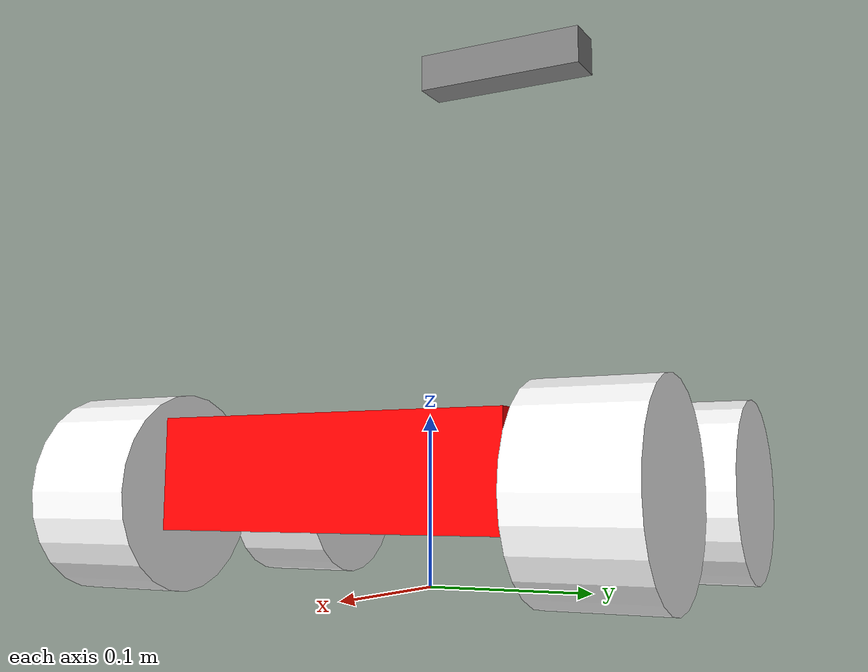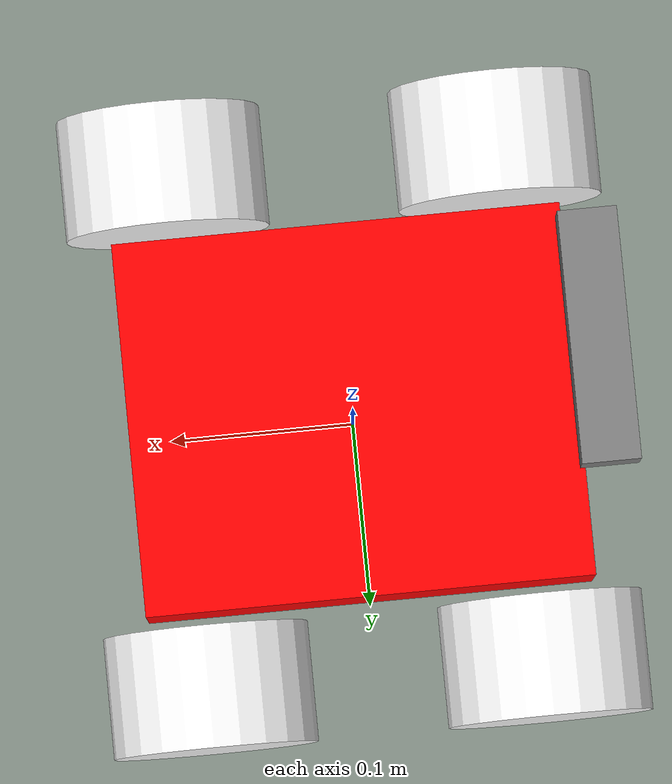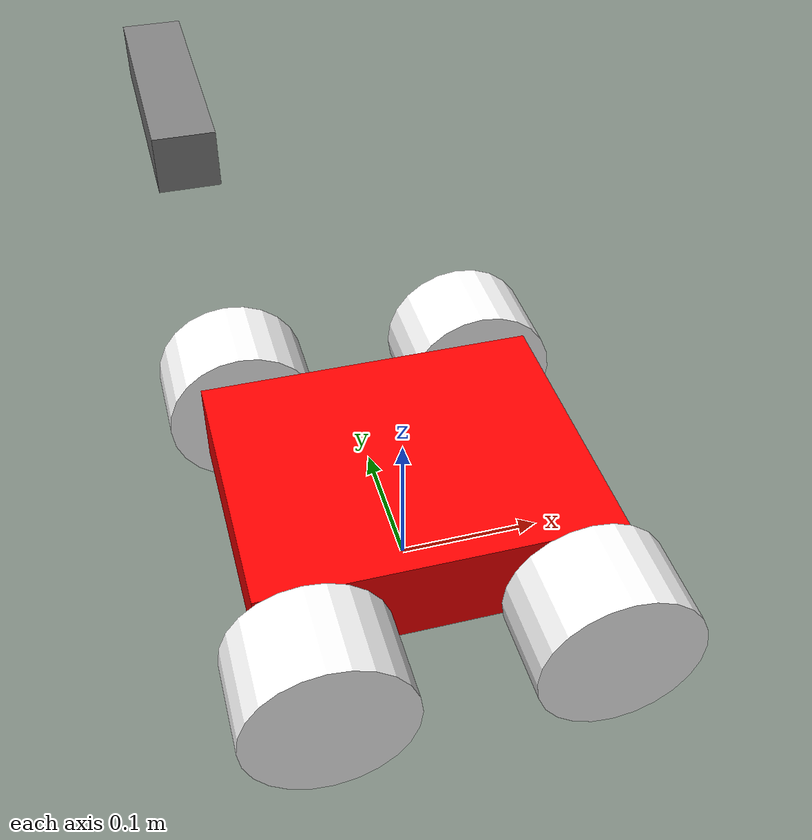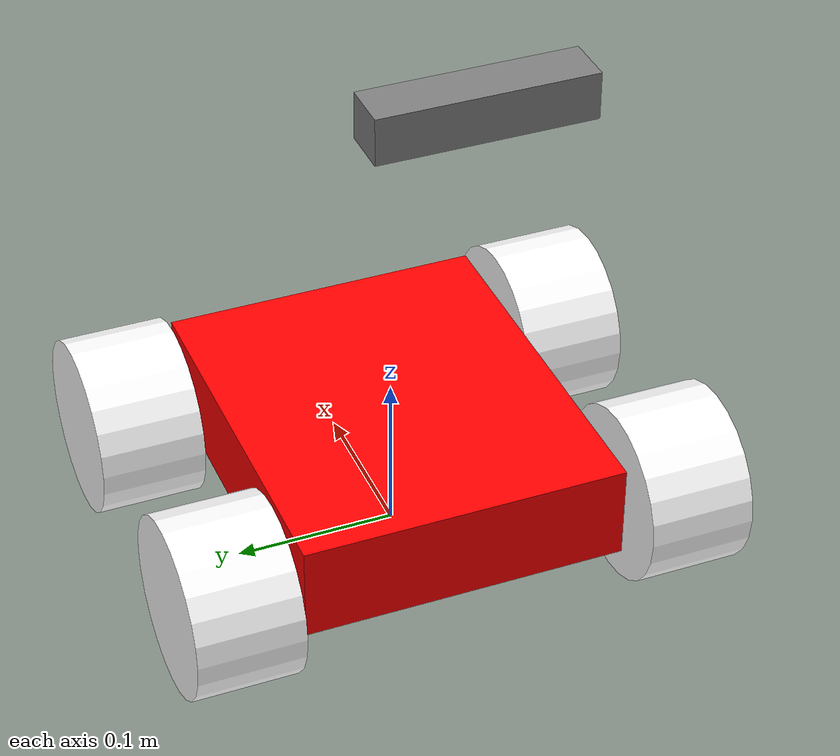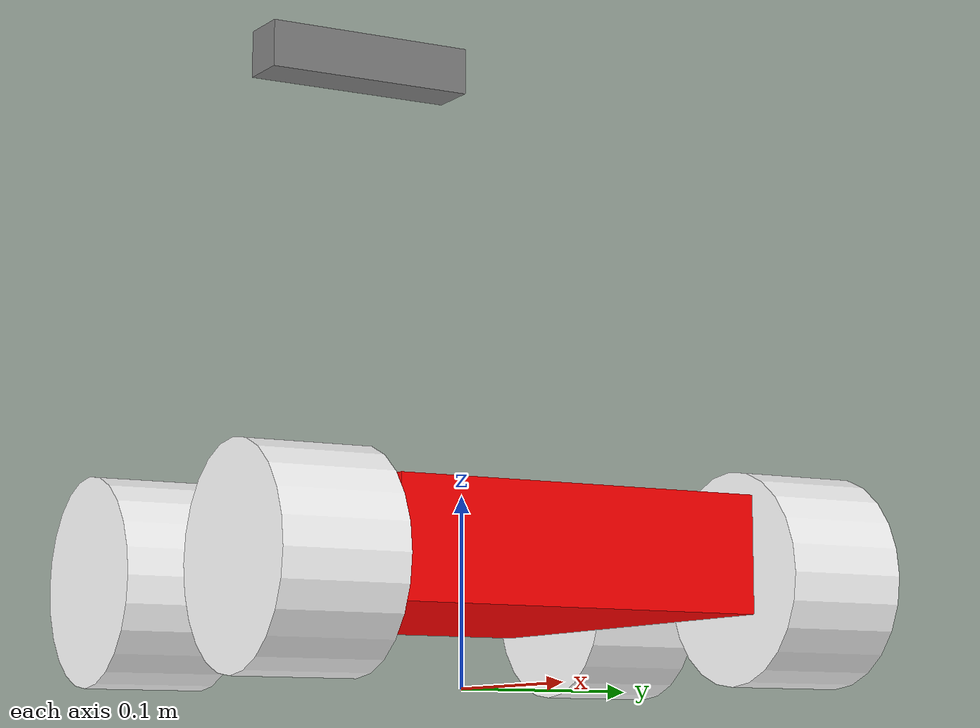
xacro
<?xml version="1.0" ?>
<robot name="mariam" xmlns:xacro="http://ros.org/wiki/xacro">

  <!-- ****************** ROBOT CONSTANTS *******************************  -->
  <!-- Define the size of the robot's main chassis in meters -->
  <xacro:property name="base_width" value="0.20"/>
  <xacro:property name="base_length" value="0.24"/>
  <xacro:property name="base_height" value="0.06"/>

  <!-- Define the shape of the robot's two back wheels in meters -->
  <xacro:property name="wheel_radius" value="0.055"/>
  <xacro:property name="wheel_width" value="0.065"/>

  <!-- x-axis points forward, y-axis points to left, z-axis points upwards -->
  <!-- Define the gap between the wheel and chassis along y-axis in meters -->
  <xacro:property name="wheel_ygap" value="0.04"/>

  <!-- Position the wheels along the z-axis -->
  <xacro:property name="wheel_zoff" value="0.01"/>

  <!-- Position the wheels along the x-axis -->
  <xacro:property name="wheel_xoff" value="0.09"/>

  <!-- Define intertial property macros  -->
  <xacro:macro name="box_inertia" params="m w h d">
    <inertial>
      <origin xyz="0 0 0" rpy="${pi/2} 0 ${pi/2}"/>
      <mass value="${m}"/>
      <inertia ixx="${(m/12) * (h*h + d*d)}" ixy="0.0" ixz="0.0" iyy="${(m/12) * (w*w + d*d)}" iyz="0.0" izz="${(m/12) * (w*w + h*h)}"/>
    </inertial>
  </xacro:macro>

  <xacro:macro name="cylinder_inertia" params="m r h">
    <inertial>
      <origin xyz="0 0 0" rpy="${pi/2} 0 0" />
      <mass value="${m}"/>
      <inertia ixx="${(m/12) * (3*r*r + h*h)}" ixy = "0" ixz = "0" iyy="${(m/12) * (3*r*r + h*h)}" iyz = "0" izz="${(m/2) * (r*r)}"/>
    </inertial>
  </xacro:macro>

  <xacro:macro name="sphere_inertia" params="m r">
    <inertial>
      <mass value="${m}"/>
      <inertia ixx="${(2/5) * m * (r*r)}" ixy="0.0" ixz="0.0" iyy="${(2/5) * m * (r*r)}" iyz="0.0" izz="${(2/5) * m * (r*r)}"/>
    </inertial>
  </xacro:macro>

  <!-- ****************** ROBOT BASE FOOTPRINT ***************************  -->
  <!-- Define the center of the main robot chassis projected on the ground -->
  <link name="base_footprint">
  </link>

  <!-- The base footprint of the robot is located underneath the chassis -->
  <joint name="base_joint" type="fixed">
    <parent link="base_footprint"/>
    <child link="base_link" />
    <origin xyz="0.0 0.0 ${(wheel_radius+wheel_zoff)}" rpy="0 0 0"/>
  </joint>

  <!-- ********************** ROBOT BASE *********************************  -->
  <link name="base_link">
    <visual>
      <origin xyz="0 0 0" rpy="0 0 0"/>
      <geometry>
        <box size="${base_length} ${base_width} ${base_height}"/>
      </geometry>
      <material name="Red">
        <color rgba="${255/255} ${0/255} ${0/255} 1.0"/>
      </material>
    </visual>

    <collision>
      <geometry>
        <box size="${base_length} ${base_width} ${base_height}"/>
      </geometry>
    </collision>

    <xacro:box_inertia m="40.0" w="${base_width}" d="${base_length}" h="${base_height}"/>
  </link>

  <gazebo reference="base_link">
    <material>Gazebo/Red</material>
  </gazebo>

  <!-- *********************** DRIVE WHEELS ******************************  -->

  <xacro:macro name="wheel" params="prefix x_reflect y_reflect">
    <link name="${prefix}_link">
      <visual>
        <origin xyz="0 0 0" rpy="1.5707963267949 0 0"/>
        <geometry>
            <cylinder radius="${wheel_radius}" length="${wheel_width}"/>
        </geometry>
        <material name="White">
          <color rgba="${255/255} ${255/255} ${255/255} 1.0"/>
        </material>
      </visual>

      <collision>
        <origin xyz="0 0 0" rpy="${pi/2} 0 0"/>
        <geometry>
          <cylinder radius="${wheel_radius}" length="${wheel_width}"/>
        </geometry>
      </collision>

      <xacro:cylinder_inertia m="20.0" r="${wheel_radius}" h="${wheel_width}"/>

    </link>

    <!-- Connect the wheels to the base_link at the appropriate location, and
         define a continuous joint to allow the wheels to freely rotate about
         an axis -->
    <joint name="${prefix}_joint" type="revolute">
      <parent link="base_link"/>
      <child link="${prefix}_link"/>
      <origin xyz="${x_reflect*wheel_xoff} ${y_reflect*(base_width/2+wheel_ygap)} ${-wheel_zoff}" rpy="0 0 0"/>
      <limit upper="3.1415" lower="-3.1415" effort="30" velocity="5.0"/>
      <axis xyz="0 1 0"/>
    </joint>
  </xacro:macro>

  <!-- Instantiate four wheels using the macro we just made through the
       xacro:wheel tags. We also define the parameters to have two wheel
       on both sides -->
  <xacro:wheel prefix="drivewheel_left_front" x_reflect="1" y_reflect="1" />
  <xacro:wheel prefix="drivewheel_right_front" x_reflect="1" y_reflect="-1" />
  <xacro:wheel prefix="drivewheel_left_back" x_reflect="-1" y_reflect="1" />
  <xacro:wheel prefix="drivewheel_right_back" x_reflect="-1" y_reflect="-1" />

  <!-- *********************** REALSENSE SETUP **********************************  -->
  <link name="camera_link">
    <visual>
      <geometry>
        <box size=" 0.029 0.124 0.027"/>
      </geometry>
      <material name="Grey">
        <color rgba="0.5 0.5 0.5 1.0"/>
      </material>
    </visual>
    <collision>
      <geometry>
        <box size="0.029 0.124 0.027"/>
      </geometry>
    </collision>
    <xacro:box_inertia m="1.0" w="0.029" d="0.124" h="0.027"/>
  </link>

  <joint name="camera_joint" type="fixed">
    <parent link="base_link"/>
    <child link="camera_link"/>
    <origin xyz="-${base_length/2} 0 0.3" rpy="0 0 0"/>
  </joint>

  <!-- *********************** INTERBOTIX SETUP **********************************  -->

  <!-- Include the robotic arm xacro file -->
  <!-- Attach the robotic arm to the base_link -->

  <!-- *********************** MODIFIED INTERBOTIX SETUP **********************************  -->

  <!-- Include the robotic arm xacro file -->

  <!-- Attach the robotic arm to the base_link -->

</robot>
